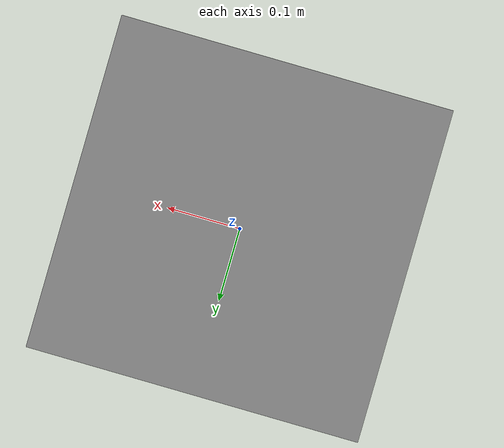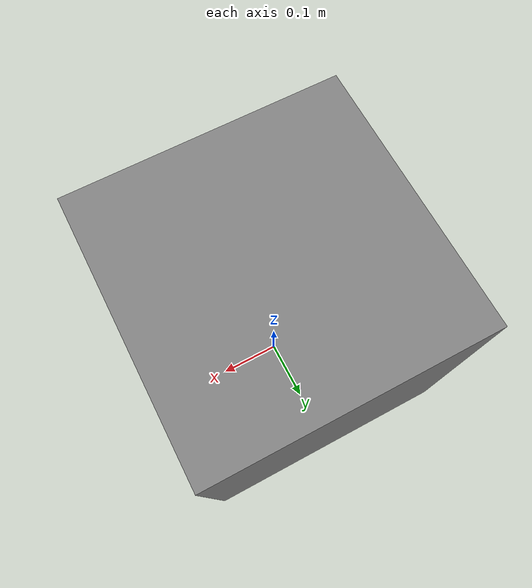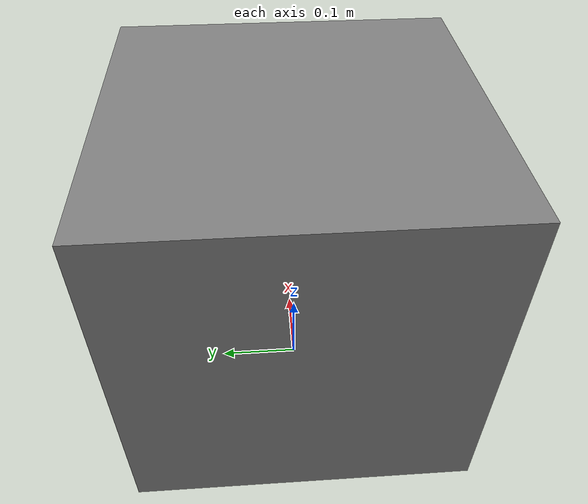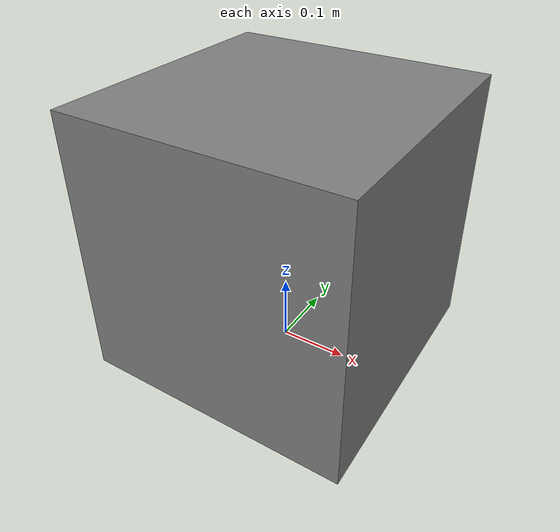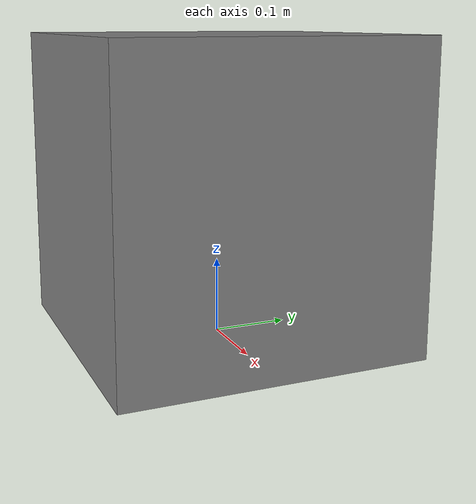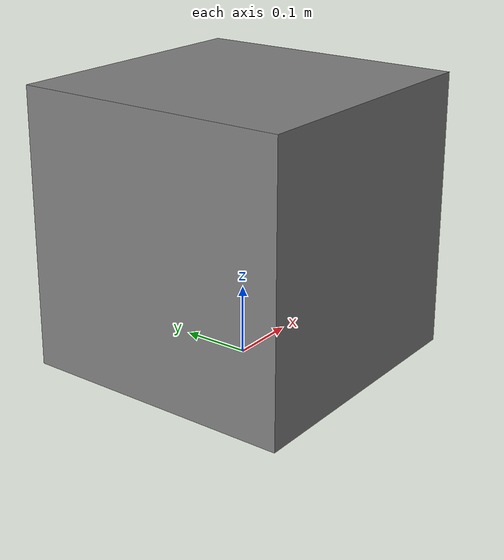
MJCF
<mujoco model="door">
  <worldbody>
    <body name="key_box" pos="0 0 .2">
      <joint type="ball" damping="0.01" />
      <geom name="key_box_geom" type="box" size="0.2 0.2 0.2" density="2"/>
      <site name="box_site"/>
    </body>
  </worldbody>
</mujoco>
